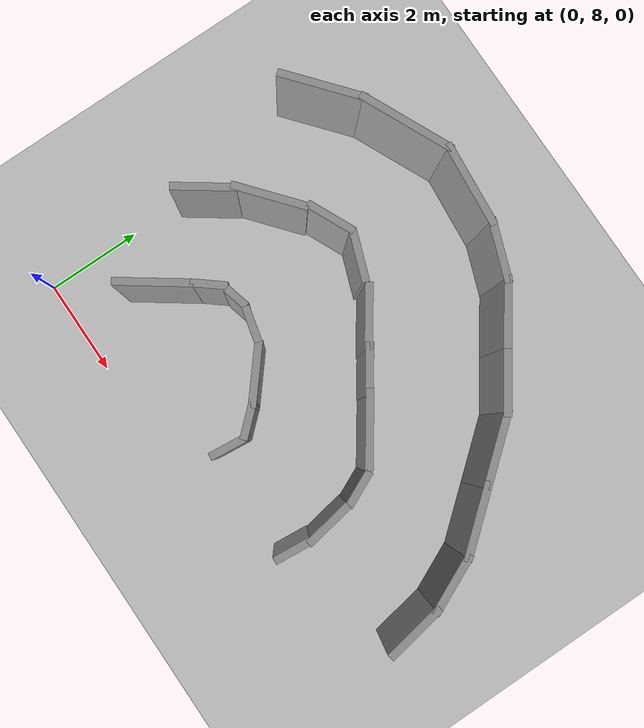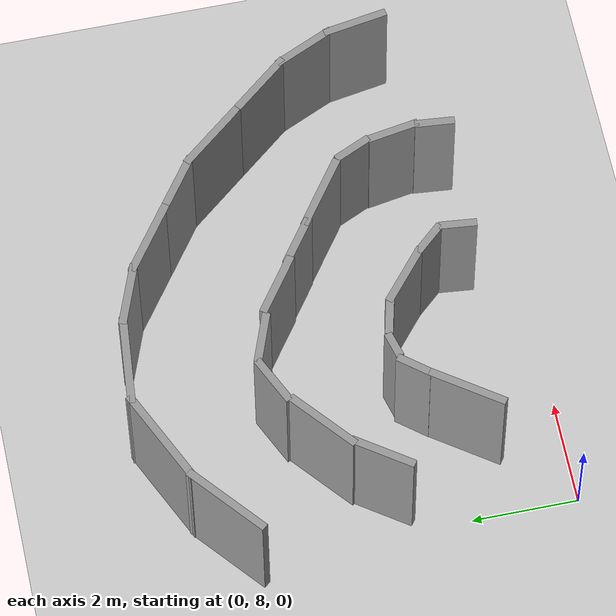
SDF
<sdf version="1.6">
 <world name="default">
  <model name="ground_plane">
   <static>1</static>
   <link name="link">
    <collision name="collision">
     <geometry><plane><normal>0 0 1</normal><size>100 100</size></plane></geometry>
     <surface><friction><ode><mu>100</mu><mu2>50</mu2></ode></friction></surface>
    </collision>
    <visual name="visual">
     <cast_shadows>0</cast_shadows>
     <geometry><plane><normal>0 0 1</normal><size>100 100</size></plane></geometry>
     <material>
      <script><uri>file://media/materials/scripts/gazebo.material</uri><name>Gazebo/Grey</name></script>
     </material>
    </visual>
   </link>
  </model>
  <model name="c-Snail_v3">
   <link name="Wall_24">
    <pose>8.66139 -4.4816 0 0 -0 0.785398</pose>
    <visual name="Wall_24_Visual">
     <pose>0 0 1.25 0 -0 0</pose>
     <geometry><box><size>1.25 0.15 2.5</size></box></geometry>
     <material>
      <script><uri>file://media/materials/scripts/gazebo.material</uri><name>Gazebo/Grey</name></script>
      <ambient>1 1 1 1</ambient>
     </material>
     <meta><layer>0</layer></meta>
    </visual>
    <collision name="Wall_24_Collision">
     <pose>0 0 1.25 0 -0 0</pose>
     <geometry><box><size>1.25 0.15 2.5</size></box></geometry>
     <surface>
      <friction>
       <ode><mu>1</mu><mu2>1</mu2><fdir1>0 0 0</fdir1><slip1>0</slip1><slip2>0</slip2></ode>
       <torsional>
        <coefficient>1</coefficient>
        <patch_radius>0</patch_radius>
        <surface_radius>0</surface_radius>
        <use_patch_radius>1</use_patch_radius>
        <ode><slip>0</slip></ode>
       </torsional>
      </friction>
      <bounce><restitution_coefficient>0</restitution_coefficient><threshold>1e+06</threshold></bounce>
      <contact>
       <collide_without_contact>0</collide_without_contact>
       <collide_without_contact_bitmask>1</collide_without_contact_bitmask>
       <collide_bitmask>1</collide_bitmask>
       <ode>
        <soft_cfm>0</soft_cfm>
        <soft_erp>0.2</soft_erp>
        <kp>1e+13</kp>
        <kd>1</kd>
        <max_vel>0.01</max_vel>
        <min_depth>0</min_depth>
       </ode>
       <bullet>
        <split_impulse>1</split_impulse>
        <split_impulse_penetration_threshold>-0.01</split_impulse_penetration_threshold>
        <soft_cfm>0</soft_cfm>
        <soft_erp>0.2</soft_erp>
        <kp>1e+13</kp>
        <kd>1</kd>
       </bullet>
      </contact>
     </surface>
    </collision>
   </link>
   <link name="Wall_25">
    <pose>9.3253 -3.61638 0 0 -0 1.0472</pose>
    <visual name="Wall_25_Visual">
     <pose>0 0 1.25 0 -0 0</pose>
     <geometry><box><size>1.25 0.15 2.5</size></box></geometry>
     <material>
      <script><uri>file://media/materials/scripts/gazebo.material</uri><name>Gazebo/Grey</name></script>
      <ambient>1 1 1 1</ambient>
     </material>
     <meta><layer>0</layer></meta>
    </visual>
    <collision name="Wall_25_Collision">
     <pose>0 0 1.25 0 -0 0</pose>
     <geometry><box><size>1.25 0.15 2.5</size></box></geometry>
     <surface>
      <friction>
       <ode><mu>1</mu><mu2>1</mu2><fdir1>0 0 0</fdir1><slip1>0</slip1><slip2>0</slip2></ode>
       <torsional>
        <coefficient>1</coefficient>
        <patch_radius>0</patch_radius>
        <surface_radius>0</surface_radius>
        <use_patch_radius>1</use_patch_radius>
        <ode><slip>0</slip></ode>
       </torsional>
      </friction>
      <bounce><restitution_coefficient>0</restitution_coefficient><threshold>1e+06</threshold></bounce>
      <contact>
       <collide_without_contact>0</collide_without_contact>
       <collide_without_contact_bitmask>1</collide_without_contact_bitmask>
       <collide_bitmask>1</collide_bitmask>
       <ode>
        <soft_cfm>0</soft_cfm>
        <soft_erp>0.2</soft_erp>
        <kp>1e+13</kp>
        <kd>1</kd>
        <max_vel>0.01</max_vel>
        <min_depth>0</min_depth>
       </ode>
       <bullet>
        <split_impulse>1</split_impulse>
        <split_impulse_penetration_threshold>-0.01</split_impulse_penetration_threshold>
        <soft_cfm>0</soft_cfm>
        <soft_erp>0.2</soft_erp>
        <kp>1e+13</kp>
        <kd>1</kd>
       </bullet>
      </contact>
     </surface>
    </collision>
   </link>
   <link name="Wall_26">
    <pose>9.775 -2.48806 0 0 -0 1.309</pose>
    <visual name="Wall_26_Visual">
     <pose>0 0 1.25 0 -0 0</pose>
     <geometry><box><size>1.5 0.15 2.5</size></box></geometry>
     <material>
      <script><uri>file://media/materials/scripts/gazebo.material</uri><name>Gazebo/Grey</name></script>
      <ambient>1 1 1 1</ambient>
     </material>
     <meta><layer>0</layer></meta>
    </visual>
    <collision name="Wall_26_Collision">
     <pose>0 0 1.25 0 -0 0</pose>
     <geometry><box><size>1.5 0.15 2.5</size></box></geometry>
     <surface>
      <friction>
       <ode><mu>1</mu><mu2>1</mu2><fdir1>0 0 0</fdir1><slip1>0</slip1><slip2>0</slip2></ode>
       <torsional>
        <coefficient>1</coefficient>
        <patch_radius>0</patch_radius>
        <surface_radius>0</surface_radius>
        <use_patch_radius>1</use_patch_radius>
        <ode><slip>0</slip></ode>
       </torsional>
      </friction>
      <bounce><restitution_coefficient>0</restitution_coefficient><threshold>1e+06</threshold></bounce>
      <contact>
       <collide_without_contact>0</collide_without_contact>
       <collide_without_contact_bitmask>1</collide_without_contact_bitmask>
       <collide_bitmask>1</collide_bitmask>
       <ode>
        <soft_cfm>0</soft_cfm>
        <soft_erp>0.2</soft_erp>
        <kp>1e+13</kp>
        <kd>1</kd>
        <max_vel>0.01</max_vel>
        <min_depth>0</min_depth>
       </ode>
       <bullet>
        <split_impulse>1</split_impulse>
        <split_impulse_penetration_threshold>-0.01</split_impulse_penetration_threshold>
        <soft_cfm>0</soft_cfm>
        <soft_erp>0.2</soft_erp>
        <kp>1e+13</kp>
        <kd>1</kd>
       </bullet>
      </contact>
     </surface>
    </collision>
   </link>
   <link name="Wall_27">
    <pose>10.1244 -1.18406 0 0 -0 1.309</pose>
    <visual name="Wall_27_Visual">
     <pose>0 0 1.25 0 -0 0</pose>
     <geometry><box><size>1.5 0.15 2.5</size></box></geometry>
     <material>
      <script><uri>file://media/materials/scripts/gazebo.material</uri><name>Gazebo/Grey</name></script>
      <ambient>1 1 1 1</ambient>
     </material>
     <meta><layer>0</layer></meta>
    </visual>
    <collision name="Wall_27_Collision">
     <pose>0 0 1.25 0 -0 0</pose>
     <geometry><box><size>1.5 0.15 2.5</size></box></geometry>
     <surface>
      <friction>
       <ode><mu>1</mu><mu2>1</mu2><fdir1>0 0 0</fdir1><slip1>0</slip1><slip2>0</slip2></ode>
       <torsional>
        <coefficient>1</coefficient>
        <patch_radius>0</patch_radius>
        <surface_radius>0</surface_radius>
        <use_patch_radius>1</use_patch_radius>
        <ode><slip>0</slip></ode>
       </torsional>
      </friction>
      <bounce><restitution_coefficient>0</restitution_coefficient><threshold>1e+06</threshold></bounce>
      <contact>
       <collide_without_contact>0</collide_without_contact>
       <collide_without_contact_bitmask>1</collide_without_contact_bitmask>
       <collide_bitmask>1</collide_bitmask>
       <ode>
        <soft_cfm>0</soft_cfm>
        <soft_erp>0.2</soft_erp>
        <kp>1e+13</kp>
        <kd>1</kd>
        <max_vel>0.01</max_vel>
        <min_depth>0</min_depth>
       </ode>
       <bullet>
        <split_impulse>1</split_impulse>
        <split_impulse_penetration_threshold>-0.01</split_impulse_penetration_threshold>
        <soft_cfm>0</soft_cfm>
        <soft_erp>0.2</soft_erp>
        <kp>1e+13</kp>
        <kd>1</kd>
       </bullet>
      </contact>
     </surface>
    </collision>
   </link>
   <link name="Wall_28">
    <pose>10.2991 0.017937 0 0 -0 1.5708</pose>
    <visual name="Wall_28_Visual">
     <pose>0 0 1.25 0 -0 0</pose>
     <geometry><box><size>1.25 0.15 2.5</size></box></geometry>
     <material>
      <script><uri>file://media/materials/scripts/gazebo.material</uri><name>Gazebo/Grey</name></script>
      <ambient>1 1 1 1</ambient>
     </material>
     <meta><layer>0</layer></meta>
    </visual>
    <collision name="Wall_28_Collision">
     <pose>0 0 1.25 0 -0 0</pose>
     <geometry><box><size>1.25 0.15 2.5</size></box></geometry>
     <surface>
      <friction>
       <ode><mu>1</mu><mu2>1</mu2><fdir1>0 0 0</fdir1><slip1>0</slip1><slip2>0</slip2></ode>
       <torsional>
        <coefficient>1</coefficient>
        <patch_radius>0</patch_radius>
        <surface_radius>0</surface_radius>
        <use_patch_radius>1</use_patch_radius>
        <ode><slip>0</slip></ode>
       </torsional>
      </friction>
      <bounce><restitution_coefficient>0</restitution_coefficient><threshold>1e+06</threshold></bounce>
      <contact>
       <collide_without_contact>0</collide_without_contact>
       <collide_without_contact_bitmask>1</collide_without_contact_bitmask>
       <collide_bitmask>1</collide_bitmask>
       <ode>
        <soft_cfm>0</soft_cfm>
        <soft_erp>0.2</soft_erp>
        <kp>1e+13</kp>
        <kd>1</kd>
        <max_vel>0.01</max_vel>
        <min_depth>0</min_depth>
       </ode>
       <bullet>
        <split_impulse>1</split_impulse>
        <split_impulse_penetration_threshold>-0.01</split_impulse_penetration_threshold>
        <soft_cfm>0</soft_cfm>
        <soft_erp>0.2</soft_erp>
        <kp>1e+13</kp>
        <kd>1</kd>
       </bullet>
      </contact>
     </surface>
    </collision>
   </link>
   <link name="Wall_29">
    <pose>10.2991 1.24294 0 0 -0 1.5708</pose>
    <visual name="Wall_29_Visual">
     <pose>0 0 1.25 0 -0 0</pose>
     <geometry><box><size>1.5 0.15 2.5</size></box></geometry>
     <material>
      <script><uri>file://media/materials/scripts/gazebo.material</uri><name>Gazebo/Grey</name></script>
      <ambient>1 1 1 1</ambient>
     </material>
     <meta><layer>0</layer></meta>
    </visual>
    <collision name="Wall_29_Collision">
     <pose>0 0 1.25 0 -0 0</pose>
     <geometry><box><size>1.5 0.15 2.5</size></box></geometry>
     <surface>
      <friction>
       <ode><mu>1</mu><mu2>1</mu2><fdir1>0 0 0</fdir1><slip1>0</slip1><slip2>0</slip2></ode>
       <torsional>
        <coefficient>1</coefficient>
        <patch_radius>0</patch_radius>
        <surface_radius>0</surface_radius>
        <use_patch_radius>1</use_patch_radius>
        <ode><slip>0</slip></ode>
       </torsional>
      </friction>
      <bounce><restitution_coefficient>0</restitution_coefficient><threshold>1e+06</threshold></bounce>
      <contact>
       <collide_without_contact>0</collide_without_contact>
       <collide_without_contact_bitmask>1</collide_without_contact_bitmask>
       <collide_bitmask>1</collide_bitmask>
       <ode>
        <soft_cfm>0</soft_cfm>
        <soft_erp>0.2</soft_erp>
        <kp>1e+13</kp>
        <kd>1</kd>
        <max_vel>0.01</max_vel>
        <min_depth>0</min_depth>
       </ode>
       <bullet>
        <split_impulse>1</split_impulse>
        <split_impulse_penetration_threshold>-0.01</split_impulse_penetration_threshold>
        <soft_cfm>0</soft_cfm>
        <soft_erp>0.2</soft_erp>
        <kp>1e+13</kp>
        <kd>1</kd>
       </bullet>
      </contact>
     </surface>
    </collision>
   </link>
   <link name="Wall_30">
    <pose>10.1568 2.4492 0 0 -0 1.8326</pose>
    <visual name="Wall_30_Visual">
     <pose>0 0 1.25 0 -0 0</pose>
     <geometry><box><size>1.25 0.15 2.5</size></box></geometry>
     <material>
      <script><uri>file://media/materials/scripts/gazebo.material</uri><name>Gazebo/Grey</name></script>
      <ambient>1 1 1 1</ambient>
     </material>
     <meta><layer>0</layer></meta>
    </visual>
    <collision name="Wall_30_Collision">
     <pose>0 0 1.25 0 -0 0</pose>
     <geometry><box><size>1.25 0.15 2.5</size></box></geometry>
     <surface>
      <friction>
       <ode><mu>1</mu><mu2>1</mu2><fdir1>0 0 0</fdir1><slip1>0</slip1><slip2>0</slip2></ode>
       <torsional>
        <coefficient>1</coefficient>
        <patch_radius>0</patch_radius>
        <surface_radius>0</surface_radius>
        <use_patch_radius>1</use_patch_radius>
        <ode><slip>0</slip></ode>
       </torsional>
      </friction>
      <bounce><restitution_coefficient>0</restitution_coefficient><threshold>1e+06</threshold></bounce>
      <contact>
       <collide_without_contact>0</collide_without_contact>
       <collide_without_contact_bitmask>1</collide_without_contact_bitmask>
       <collide_bitmask>1</collide_bitmask>
       <ode>
        <soft_cfm>0</soft_cfm>
        <soft_erp>0.2</soft_erp>
        <kp>1e+13</kp>
        <kd>1</kd>
        <max_vel>0.01</max_vel>
        <min_depth>0</min_depth>
       </ode>
       <bullet>
        <split_impulse>1</split_impulse>
        <split_impulse_penetration_threshold>-0.01</split_impulse_penetration_threshold>
        <soft_cfm>0</soft_cfm>
        <soft_erp>0.2</soft_erp>
        <kp>1e+13</kp>
        <kd>1</kd>
       </bullet>
      </contact>
     </surface>
    </collision>
   </link>
   <link name="Wall_31">
    <pose>9.61441 3.67328 0 0 -0 2.0944</pose>
    <visual name="Wall_31_Visual">
     <pose>0 0 1.25 0 -0 0</pose>
     <geometry><box><size>1.75 0.15 2.5</size></box></geometry>
     <material>
      <script><uri>file://media/materials/scripts/gazebo.material</uri><name>Gazebo/Grey</name></script>
      <ambient>1 1 1 1</ambient>
     </material>
     <meta><layer>0</layer></meta>
    </visual>
    <collision name="Wall_31_Collision">
     <pose>0 0 1.25 0 -0 0</pose>
     <geometry><box><size>1.75 0.15 2.5</size></box></geometry>
     <surface>
      <friction>
       <ode><mu>1</mu><mu2>1</mu2><fdir1>0 0 0</fdir1><slip1>0</slip1><slip2>0</slip2></ode>
       <torsional>
        <coefficient>1</coefficient>
        <patch_radius>0</patch_radius>
        <surface_radius>0</surface_radius>
        <use_patch_radius>1</use_patch_radius>
        <ode><slip>0</slip></ode>
       </torsional>
      </friction>
      <bounce><restitution_coefficient>0</restitution_coefficient><threshold>1e+06</threshold></bounce>
      <contact>
       <collide_without_contact>0</collide_without_contact>
       <collide_without_contact_bitmask>1</collide_without_contact_bitmask>
       <collide_bitmask>1</collide_bitmask>
       <ode>
        <soft_cfm>0</soft_cfm>
        <soft_erp>0.2</soft_erp>
        <kp>1e+13</kp>
        <kd>1</kd>
        <max_vel>0.01</max_vel>
        <min_depth>0</min_depth>
       </ode>
       <bullet>
        <split_impulse>1</split_impulse>
        <split_impulse_penetration_threshold>-0.01</split_impulse_penetration_threshold>
        <soft_cfm>0</soft_cfm>
        <soft_erp>0.2</soft_erp>
        <kp>1e+13</kp>
        <kd>1</kd>
       </bullet>
      </contact>
     </surface>
    </collision>
   </link>
   <link name="Wall_32">
    <pose>8.41334 4.8286 0 0 -0 2.61799</pose>
    <visual name="Wall_32_Visual">
     <pose>0 0 1.25 0 -0 0</pose>
     <geometry><box><size>2 0.15 2.5</size></box></geometry>
     <material>
      <script><uri>file://media/materials/scripts/gazebo.material</uri><name>Gazebo/Grey</name></script>
      <ambient>1 1 1 1</ambient>
     </material>
     <meta><layer>0</layer></meta>
    </visual>
    <collision name="Wall_32_Collision">
     <pose>0 0 1.25 0 -0 0</pose>
     <geometry><box><size>2 0.15 2.5</size></box></geometry>
     <surface>
      <friction>
       <ode><mu>1</mu><mu2>1</mu2><fdir1>0 0 0</fdir1><slip1>0</slip1><slip2>0</slip2></ode>
       <torsional>
        <coefficient>1</coefficient>
        <patch_radius>0</patch_radius>
        <surface_radius>0</surface_radius>
        <use_patch_radius>1</use_patch_radius>
        <ode><slip>0</slip></ode>
       </torsional>
      </friction>
      <bounce><restitution_coefficient>0</restitution_coefficient><threshold>1e+06</threshold></bounce>
      <contact>
       <collide_without_contact>0</collide_without_contact>
       <collide_without_contact_bitmask>1</collide_without_contact_bitmask>
       <collide_bitmask>1</collide_bitmask>
       <ode>
        <soft_cfm>0</soft_cfm>
        <soft_erp>0.2</soft_erp>
        <kp>1e+13</kp>
        <kd>1</kd>
        <max_vel>0.01</max_vel>
        <min_depth>0</min_depth>
       </ode>
       <bullet>
        <split_impulse>1</split_impulse>
        <split_impulse_penetration_threshold>-0.01</split_impulse_penetration_threshold>
        <soft_cfm>0</soft_cfm>
        <soft_erp>0.2</soft_erp>
        <kp>1e+13</kp>
        <kd>1</kd>
       </bullet>
      </contact>
     </surface>
    </collision>
   </link>
   <link name="Wall_33">
    <pose>6.83952 5.49815 0 0 -0 2.87979</pose>
    <visual name="Wall_33_Visual">
     <pose>0 0 1.25 0 -0 0</pose>
     <geometry><box><size>1.75 0.15 2.5</size></box></geometry>
     <material>
      <script><uri>file://media/materials/scripts/gazebo.material</uri><name>Gazebo/Grey</name></script>
      <ambient>1 1 1 1</ambient>
     </material>
     <meta><layer>0</layer></meta>
    </visual>
    <collision name="Wall_33_Collision">
     <pose>0 0 1.25 0 -0 0</pose>
     <geometry><box><size>1.75 0.15 2.5</size></box></geometry>
     <surface>
      <friction>
       <ode><mu>1</mu><mu2>1</mu2><fdir1>0 0 0</fdir1><slip1>0</slip1><slip2>0</slip2></ode>
       <torsional>
        <coefficient>1</coefficient>
        <patch_radius>0</patch_radius>
        <surface_radius>0</surface_radius>
        <use_patch_radius>1</use_patch_radius>
        <ode><slip>0</slip></ode>
       </torsional>
      </friction>
      <bounce><restitution_coefficient>0</restitution_coefficient><threshold>1e+06</threshold></bounce>
      <contact>
       <collide_without_contact>0</collide_without_contact>
       <collide_without_contact_bitmask>1</collide_without_contact_bitmask>
       <collide_bitmask>1</collide_bitmask>
       <ode>
        <soft_cfm>0</soft_cfm>
        <soft_erp>0.2</soft_erp>
        <kp>1e+13</kp>
        <kd>1</kd>
        <max_vel>0.01</max_vel>
        <min_depth>0</min_depth>
       </ode>
       <bullet>
        <split_impulse>1</split_impulse>
        <split_impulse_penetration_threshold>-0.01</split_impulse_penetration_threshold>
        <soft_cfm>0</soft_cfm>
        <soft_erp>0.2</soft_erp>
        <kp>1e+13</kp>
        <kd>1</kd>
       </bullet>
      </contact>
     </surface>
    </collision>
   </link>
   <link name="Wall_51">
    <pose>6.44534 -3.07335 0 0 -0 0.523599</pose>
    <visual name="Wall_51_Visual">
     <pose>0 0 1.25 0 -0 0</pose>
     <geometry><box><size>0.75 0.15 2.5</size></box></geometry>
     <material>
      <script><uri>file://media/materials/scripts/gazebo.material</uri><name>Gazebo/Grey</name></script>
      <ambient>1 1 1 1</ambient>
     </material>
     <meta><layer>0</layer></meta>
    </visual>
    <collision name="Wall_51_Collision">
     <pose>0 0 1.25 0 -0 0</pose>
     <geometry><box><size>0.75 0.15 2.5</size></box></geometry>
     <surface>
      <friction>
       <ode><mu>1</mu><mu2>1</mu2><fdir1>0 0 0</fdir1><slip1>0</slip1><slip2>0</slip2></ode>
       <torsional>
        <coefficient>1</coefficient>
        <patch_radius>0</patch_radius>
        <surface_radius>0</surface_radius>
        <use_patch_radius>1</use_patch_radius>
        <ode><slip>0</slip></ode>
       </torsional>
      </friction>
      <bounce><restitution_coefficient>0</restitution_coefficient><threshold>1e+06</threshold></bounce>
      <contact>
       <collide_without_contact>0</collide_without_contact>
       <collide_without_contact_bitmask>1</collide_without_contact_bitmask>
       <collide_bitmask>1</collide_bitmask>
       <ode>
        <soft_cfm>0</soft_cfm>
        <soft_erp>0.2</soft_erp>
        <kp>1e+13</kp>
        <kd>1</kd>
        <max_vel>0.01</max_vel>
        <min_depth>0</min_depth>
       </ode>
       <bullet>
        <split_impulse>1</split_impulse>
        <split_impulse_penetration_threshold>-0.01</split_impulse_penetration_threshold>
        <soft_cfm>0</soft_cfm>
        <soft_erp>0.2</soft_erp>
        <kp>1e+13</kp>
        <kd>1</kd>
       </bullet>
      </contact>
     </surface>
    </collision>
   </link>
   <link name="Wall_52">
    <pose>7.08455 -2.59483 0 0 -0 0.785398</pose>
    <visual name="Wall_52_Visual">
     <pose>0 0 1.25 0 -0 0</pose>
     <geometry><box><size>1 0.15 2.5</size></box></geometry>
     <material>
      <script><uri>file://media/materials/scripts/gazebo.material</uri><name>Gazebo/Grey</name></script>
      <ambient>1 1 1 1</ambient>
     </material>
     <meta><layer>0</layer></meta>
    </visual>
    <collision name="Wall_52_Collision">
     <pose>0 0 1.25 0 -0 0</pose>
     <geometry><box><size>1 0.15 2.5</size></box></geometry>
     <surface>
      <friction>
       <ode><mu>1</mu><mu2>1</mu2><fdir1>0 0 0</fdir1><slip1>0</slip1><slip2>0</slip2></ode>
       <torsional>
        <coefficient>1</coefficient>
        <patch_radius>0</patch_radius>
        <surface_radius>0</surface_radius>
        <use_patch_radius>1</use_patch_radius>
        <ode><slip>0</slip></ode>
       </torsional>
      </friction>
      <bounce><restitution_coefficient>0</restitution_coefficient><threshold>1e+06</threshold></bounce>
      <contact>
       <collide_without_contact>0</collide_without_contact>
       <collide_without_contact_bitmask>1</collide_without_contact_bitmask>
       <collide_bitmask>1</collide_bitmask>
       <ode>
        <soft_cfm>0</soft_cfm>
        <soft_erp>0.2</soft_erp>
        <kp>1e+13</kp>
        <kd>1</kd>
        <max_vel>0.01</max_vel>
        <min_depth>0</min_depth>
       </ode>
       <bullet>
        <split_impulse>1</split_impulse>
        <split_impulse_penetration_threshold>-0.01</split_impulse_penetration_threshold>
        <soft_cfm>0</soft_cfm>
        <soft_erp>0.2</soft_erp>
        <kp>1e+13</kp>
        <kd>1</kd>
       </bullet>
      </contact>
     </surface>
    </collision>
   </link>
   <link name="Wall_53">
    <pose>7.62419 -1.95298 0 0 -0 1.0472</pose>
    <visual name="Wall_53_Visual">
     <pose>0 0 1.25 0 -0 0</pose>
     <geometry><box><size>0.75 0.15 2.5</size></box></geometry>
     <material>
      <script><uri>file://media/materials/scripts/gazebo.material</uri><name>Gazebo/Grey</name></script>
      <ambient>1 1 1 1</ambient>
     </material>
     <meta><layer>0</layer></meta>
    </visual>
    <collision name="Wall_53_Collision">
     <pose>0 0 1.25 0 -0 0</pose>
     <geometry><box><size>0.75 0.15 2.5</size></box></geometry>
     <surface>
      <friction>
       <ode><mu>1</mu><mu2>1</mu2><fdir1>0 0 0</fdir1><slip1>0</slip1><slip2>0</slip2></ode>
       <torsional>
        <coefficient>1</coefficient>
        <patch_radius>0</patch_radius>
        <surface_radius>0</surface_radius>
        <use_patch_radius>1</use_patch_radius>
        <ode><slip>0</slip></ode>
       </torsional>
      </friction>
      <bounce><restitution_coefficient>0</restitution_coefficient><threshold>1e+06</threshold></bounce>
      <contact>
       <collide_without_contact>0</collide_without_contact>
       <collide_without_contact_bitmask>1</collide_without_contact_bitmask>
       <collide_bitmask>1</collide_bitmask>
       <ode>
        <soft_cfm>0</soft_cfm>
        <soft_erp>0.2</soft_erp>
        <kp>1e+13</kp>
        <kd>1</kd>
        <max_vel>0.01</max_vel>
        <min_depth>0</min_depth>
       </ode>
       <bullet>
        <split_impulse>1</split_impulse>
        <split_impulse_penetration_threshold>-0.01</split_impulse_penetration_threshold>
        <soft_cfm>0</soft_cfm>
        <soft_erp>0.2</soft_erp>
        <kp>1e+13</kp>
        <kd>1</kd>
       </bullet>
      </contact>
     </surface>
    </collision>
   </link>
   <link name="Wall_54">
    <pose>7.79615 -0.874793 0 0 -0 1.5708</pose>
    <visual name="Wall_54_Visual">
     <pose>0 0 1.25 0 -0 0</pose>
     <geometry><box><size>1.5 0.15 2.5</size></box></geometry>
     <material>
      <script><uri>file://media/materials/scripts/gazebo.material</uri><name>Gazebo/Grey</name></script>
      <ambient>1 1 1 1</ambient>
     </material>
     <meta><layer>0</layer></meta>
    </visual>
    <collision name="Wall_54_Collision">
     <pose>0 0 1.25 0 -0 0</pose>
     <geometry><box><size>1.5 0.15 2.5</size></box></geometry>
     <surface>
      <friction>
       <ode><mu>1</mu><mu2>1</mu2><fdir1>0 0 0</fdir1><slip1>0</slip1><slip2>0</slip2></ode>
       <torsional>
        <coefficient>1</coefficient>
        <patch_radius>0</patch_radius>
        <surface_radius>0</surface_radius>
        <use_patch_radius>1</use_patch_radius>
        <ode><slip>0</slip></ode>
       </torsional>
      </friction>
      <bounce><restitution_coefficient>0</restitution_coefficient><threshold>1e+06</threshold></bounce>
      <contact>
       <collide_without_contact>0</collide_without_contact>
       <collide_without_contact_bitmask>1</collide_without_contact_bitmask>
       <collide_bitmask>1</collide_bitmask>
       <ode>
        <soft_cfm>0</soft_cfm>
        <soft_erp>0.2</soft_erp>
        <kp>1e+13</kp>
        <kd>1</kd>
        <max_vel>0.01</max_vel>
        <min_depth>0</min_depth>
       </ode>
       <bullet>
        <split_impulse>1</split_impulse>
        <split_impulse_penetration_threshold>-0.01</split_impulse_penetration_threshold>
        <soft_cfm>0</soft_cfm>
        <soft_erp>0.2</soft_erp>
        <kp>1e+13</kp>
        <kd>1</kd>
       </bullet>
      </contact>
     </surface>
    </collision>
   </link>
   <link name="Wall_55">
    <pose>7.78252 0.225208 0 0 -0 1.5708</pose>
    <visual name="Wall_55_Visual">
     <pose>0 0 1.25 0 -0 0</pose>
     <geometry><box><size>1 0.15 2.5</size></box></geometry>
     <material>
      <script><uri>file://media/materials/scripts/gazebo.material</uri><name>Gazebo/Grey</name></script>
      <ambient>1 1 1 1</ambient>
     </material>
     <meta><layer>0</layer></meta>
    </visual>
    <collision name="Wall_55_Collision">
     <pose>0 0 1.25 0 -0 0</pose>
     <geometry><box><size>1 0.15 2.5</size></box></geometry>
     <surface>
      <friction>
       <ode><mu>1</mu><mu2>1</mu2><fdir1>0 0 0</fdir1><slip1>0</slip1><slip2>0</slip2></ode>
       <torsional>
        <coefficient>1</coefficient>
        <patch_radius>0</patch_radius>
        <surface_radius>0</surface_radius>
        <use_patch_radius>1</use_patch_radius>
        <ode><slip>0</slip></ode>
       </torsional>
      </friction>
      <bounce><restitution_coefficient>0</restitution_coefficient><threshold>1e+06</threshold></bounce>
      <contact>
       <collide_without_contact>0</collide_without_contact>
       <collide_without_contact_bitmask>1</collide_without_contact_bitmask>
       <collide_bitmask>1</collide_bitmask>
       <ode>
        <soft_cfm>0</soft_cfm>
        <soft_erp>0.2</soft_erp>
        <kp>1e+13</kp>
        <kd>1</kd>
        <max_vel>0.01</max_vel>
        <min_depth>0</min_depth>
       </ode>
       <bullet>
        <split_impulse>1</split_impulse>
        <split_impulse_penetration_threshold>-0.01</split_impulse_penetration_threshold>
        <soft_cfm>0</soft_cfm>
        <soft_erp>0.2</soft_erp>
        <kp>1e+13</kp>
        <kd>1</kd>
       </bullet>
      </contact>
     </surface>
    </collision>
   </link>
   <link name="Wall_56">
    <pose>7.75985 1.20021 0 0 -0 1.5708</pose>
    <visual name="Wall_56_Visual">
     <pose>0 0 1.25 0 -0 0</pose>
     <geometry><box><size>1.25 0.15 2.5</size></box></geometry>
     <material>
      <script><uri>file://media/materials/scripts/gazebo.material</uri><name>Gazebo/Grey</name></script>
      <ambient>1 1 1 1</ambient>
     </material>
     <meta><layer>0</layer></meta>
    </visual>
    <collision name="Wall_56_Collision">
     <pose>0 0 1.25 0 -0 0</pose>
     <geometry><box><size>1.25 0.15 2.5</size></box></geometry>
     <surface>
      <friction>
       <ode><mu>1</mu><mu2>1</mu2><fdir1>0 0 0</fdir1><slip1>0</slip1><slip2>0</slip2></ode>
       <torsional>
        <coefficient>1</coefficient>
        <patch_radius>0</patch_radius>
        <surface_radius>0</surface_radius>
        <use_patch_radius>1</use_patch_radius>
        <ode><slip>0</slip></ode>
       </torsional>
      </friction>
      <bounce><restitution_coefficient>0</restitution_coefficient><threshold>1e+06</threshold></bounce>
      <contact>
       <collide_without_contact>0</collide_without_contact>
       <collide_without_contact_bitmask>1</collide_without_contact_bitmask>
       <collide_bitmask>1</collide_bitmask>
       <ode>
        <soft_cfm>0</soft_cfm>
        <soft_erp>0.2</soft_erp>
        <kp>1e+13</kp>
        <kd>1</kd>
        <max_vel>0.01</max_vel>
        <min_depth>0</min_depth>
       </ode>
       <bullet>
        <split_impulse>1</split_impulse>
        <split_impulse_penetration_threshold>-0.01</split_impulse_penetration_threshold>
        <soft_cfm>0</soft_cfm>
        <soft_erp>0.2</soft_erp>
        <kp>1e+13</kp>
        <kd>1</kd>
       </bullet>
      </contact>
     </surface>
    </collision>
   </link>
   <link name="Wall_57">
    <pose>7.56918 2.29911 0 0 -0 1.8326</pose>
    <visual name="Wall_57_Visual">
     <pose>0 0 1.25 0 -0 0</pose>
     <geometry><box><size>1 0.15 2.5</size></box></geometry>
     <material>
      <script><uri>file://media/materials/scripts/gazebo.material</uri><name>Gazebo/Grey</name></script>
      <ambient>1 1 1 1</ambient>
     </material>
     <meta><layer>0</layer></meta>
    </visual>
    <collision name="Wall_57_Collision">
     <pose>0 0 1.25 0 -0 0</pose>
     <geometry><box><size>1 0.15 2.5</size></box></geometry>
     <surface>
      <friction>
       <ode><mu>1</mu><mu2>1</mu2><fdir1>0 0 0</fdir1><slip1>0</slip1><slip2>0</slip2></ode>
       <torsional>
        <coefficient>1</coefficient>
        <patch_radius>0</patch_radius>
        <surface_radius>0</surface_radius>
        <use_patch_radius>1</use_patch_radius>
        <ode><slip>0</slip></ode>
       </torsional>
      </friction>
      <bounce><restitution_coefficient>0</restitution_coefficient><threshold>1e+06</threshold></bounce>
      <contact>
       <collide_without_contact>0</collide_without_contact>
       <collide_without_contact_bitmask>1</collide_without_contact_bitmask>
       <collide_bitmask>1</collide_bitmask>
       <ode>
        <soft_cfm>0</soft_cfm>
        <soft_erp>0.2</soft_erp>
        <kp>1e+13</kp>
        <kd>1</kd>
        <max_vel>0.01</max_vel>
        <min_depth>0</min_depth>
       </ode>
       <bullet>
        <split_impulse>1</split_impulse>
        <split_impulse_penetration_threshold>-0.01</split_impulse_penetration_threshold>
        <soft_cfm>0</soft_cfm>
        <soft_erp>0.2</soft_erp>
        <kp>1e+13</kp>
        <kd>1</kd>
       </bullet>
      </contact>
     </surface>
    </collision>
   </link>
   <link name="Wall_58">
    <pose>7.036 3.00803 0 0 -0 2.61799</pose>
    <visual name="Wall_58_Visual">
     <pose>0 0 1.25 0 -0 0</pose>
     <geometry><box><size>1 0.15 2.5</size></box></geometry>
     <material>
      <script><uri>file://media/materials/scripts/gazebo.material</uri><name>Gazebo/Grey</name></script>
      <ambient>1 1 1 1</ambient>
     </material>
     <meta><layer>0</layer></meta>
    </visual>
    <collision name="Wall_58_Collision">
     <pose>0 0 1.25 0 -0 0</pose>
     <geometry><box><size>1 0.15 2.5</size></box></geometry>
     <surface>
      <friction>
       <ode><mu>1</mu><mu2>1</mu2><fdir1>0 0 0</fdir1><slip1>0</slip1><slip2>0</slip2></ode>
       <torsional>
        <coefficient>1</coefficient>
        <patch_radius>0</patch_radius>
        <surface_radius>0</surface_radius>
        <use_patch_radius>1</use_patch_radius>
        <ode><slip>0</slip></ode>
       </torsional>
      </friction>
      <bounce><restitution_coefficient>0</restitution_coefficient><threshold>1e+06</threshold></bounce>
      <contact>
       <collide_without_contact>0</collide_without_contact>
       <collide_without_contact_bitmask>1</collide_without_contact_bitmask>
       <collide_bitmask>1</collide_bitmask>
       <ode>
        <soft_cfm>0</soft_cfm>
        <soft_erp>0.2</soft_erp>
        <kp>1e+13</kp>
        <kd>1</kd>
        <max_vel>0.01</max_vel>
        <min_depth>0</min_depth>
       </ode>
       <bullet>
        <split_impulse>1</split_impulse>
        <split_impulse_penetration_threshold>-0.01</split_impulse_penetration_threshold>
        <soft_cfm>0</soft_cfm>
        <soft_erp>0.2</soft_erp>
        <kp>1e+13</kp>
        <kd>1</kd>
       </bullet>
      </contact>
     </surface>
    </collision>
   </link>
   <link name="Wall_59">
    <pose>5.90215 3.39004 0 0 -0 2.87979</pose>
    <visual name="Wall_59_Visual">
     <pose>0 0 1.25 0 -0 0</pose>
     <geometry><box><size>1.5 0.15 2.5</size></box></geometry>
     <material>
      <script><uri>file://media/materials/scripts/gazebo.material</uri><name>Gazebo/Grey</name></script>
      <ambient>1 1 1 1</ambient>
     </material>
     <meta><layer>0</layer></meta>
    </visual>
    <collision name="Wall_59_Collision">
     <pose>0 0 1.25 0 -0 0</pose>
     <geometry><box><size>1.5 0.15 2.5</size></box></geometry>
     <surface>
      <friction>
       <ode><mu>1</mu><mu2>1</mu2><fdir1>0 0 0</fdir1><slip1>0</slip1><slip2>0</slip2></ode>
       <torsional>
        <coefficient>1</coefficient>
        <patch_radius>0</patch_radius>
        <surface_radius>0</surface_radius>
        <use_patch_radius>1</use_patch_radius>
        <ode><slip>0</slip></ode>
       </torsional>
      </friction>
      <bounce><restitution_coefficient>0</restitution_coefficient><threshold>1e+06</threshold></bounce>
      <contact>
       <collide_without_contact>0</collide_without_contact>
       <collide_without_contact_bitmask>1</collide_without_contact_bitmask>
       <collide_bitmask>1</collide_bitmask>
       <ode>
        <soft_cfm>0</soft_cfm>
        <soft_erp>0.2</soft_erp>
        <kp>1e+13</kp>
        <kd>1</kd>
        <max_vel>0.01</max_vel>
        <min_depth>0</min_depth>
       </ode>
       <bullet>
        <split_impulse>1</split_impulse>
        <split_impulse_penetration_threshold>-0.01</split_impulse_penetration_threshold>
        <soft_cfm>0</soft_cfm>
        <soft_erp>0.2</soft_erp>
        <kp>1e+13</kp>
        <kd>1</kd>
       </bullet>
      </contact>
     </surface>
    </collision>
   </link>
   <link name="Wall_60">
    <pose>4.67122 3.53706 0 0 -0 3.14159</pose>
    <visual name="Wall_60_Visual">
     <pose>0 0 1.25 0 -0 0</pose>
     <geometry><box><size>1.25 0.15 2.5</size></box></geometry>
     <material>
      <script><uri>file://media/materials/scripts/gazebo.material</uri><name>Gazebo/Grey</name></script>
      <ambient>1 1 1 1</ambient>
     </material>
     <meta><layer>0</layer></meta>
    </visual>
    <collision name="Wall_60_Collision">
     <pose>0 0 1.25 0 -0 0</pose>
     <geometry><box><size>1.25 0.15 2.5</size></box></geometry>
     <surface>
      <friction>
       <ode><mu>1</mu><mu2>1</mu2><fdir1>0 0 0</fdir1><slip1>0</slip1><slip2>0</slip2></ode>
       <torsional>
        <coefficient>1</coefficient>
        <patch_radius>0</patch_radius>
        <surface_radius>0</surface_radius>
        <use_patch_radius>1</use_patch_radius>
        <ode><slip>0</slip></ode>
       </torsional>
      </friction>
      <bounce><restitution_coefficient>0</restitution_coefficient><threshold>1e+06</threshold></bounce>
      <contact>
       <collide_without_contact>0</collide_without_contact>
       <collide_without_contact_bitmask>1</collide_without_contact_bitmask>
       <collide_bitmask>1</collide_bitmask>
       <ode>
        <soft_cfm>0</soft_cfm>
        <soft_erp>0.2</soft_erp>
        <kp>1e+13</kp>
        <kd>1</kd>
        <max_vel>0.01</max_vel>
        <min_depth>0</min_depth>
       </ode>
       <bullet>
        <split_impulse>1</split_impulse>
        <split_impulse_penetration_threshold>-0.01</split_impulse_penetration_threshold>
        <soft_cfm>0</soft_cfm>
        <soft_erp>0.2</soft_erp>
        <kp>1e+13</kp>
        <kd>1</kd>
       </bullet>
      </contact>
     </surface>
    </collision>
   </link>
   <link name="Wall_71_clone">
    <pose>3.78048 1.74575 0 0 -0 3.13791</pose>
    <visual name="Wall_71_Visual">
     <pose>0 0 1.25 0 -0 0</pose>
     <geometry><box><size>1.5 0.15 2.5</size></box></geometry>
     <material>
      <script><uri>file://media/materials/scripts/gazebo.material</uri><name>Gazebo/Grey</name></script>
      <ambient>1 1 1 1</ambient>
      <shader type="pixel"/>
     </material>
     <meta><layer>0</layer></meta>
    </visual>
    <collision name="Wall_71_Collision">
     <pose>0 0 1.25 0 -0 0</pose>
     <geometry><box><size>1.5 0.15 2.5</size></box></geometry>
     <surface>
      <friction>
       <ode><mu>1</mu><mu2>1</mu2><fdir1>0 0 0</fdir1><slip1>0</slip1><slip2>0</slip2></ode>
       <torsional>
        <coefficient>1</coefficient>
        <patch_radius>0</patch_radius>
        <surface_radius>0</surface_radius>
        <use_patch_radius>1</use_patch_radius>
        <ode><slip>0</slip></ode>
       </torsional>
      </friction>
      <bounce><restitution_coefficient>0</restitution_coefficient><threshold>1e+06</threshold></bounce>
      <contact>
       <collide_without_contact>0</collide_without_contact>
       <collide_without_contact_bitmask>1</collide_without_contact_bitmask>
       <collide_bitmask>1</collide_bitmask>
       <ode>
        <soft_cfm>0</soft_cfm>
        <soft_erp>0.2</soft_erp>
        <kp>1e+13</kp>
        <kd>1</kd>
        <max_vel>0.01</max_vel>
        <min_depth>0</min_depth>
       </ode>
       <bullet>
        <split_impulse>1</split_impulse>
        <split_impulse_penetration_threshold>-0.01</split_impulse_penetration_threshold>
        <soft_cfm>0</soft_cfm>
        <soft_erp>0.2</soft_erp>
        <kp>1e+13</kp>
        <kd>1</kd>
       </bullet>
      </contact>
     </surface>
    </collision>
   </link>
   <link name="Wall_72_clone">
    <pose>5.70761 0.097339 0 0 0 -1.65202</pose>
    <visual name="Wall_72_Visual">
     <pose>0 0 1.25 0 -0 0</pose>
     <geometry><box><size>1.25 0.15 2.5</size></box></geometry>
     <material>
      <script><uri>file://media/materials/scripts/gazebo.material</uri><name>Gazebo/Grey</name></script>
      <ambient>1 1 1 1</ambient>
      <shader type="pixel"/>
     </material>
     <meta><layer>0</layer></meta>
    </visual>
    <collision name="Wall_72_Collision">
     <pose>0 0 1.25 0 -0 0</pose>
     <geometry><box><size>1.25 0.15 2.5</size></box></geometry>
     <surface>
      <friction>
       <ode><mu>1</mu><mu2>1</mu2><fdir1>0 0 0</fdir1><slip1>0</slip1><slip2>0</slip2></ode>
       <torsional>
        <coefficient>1</coefficient>
        <patch_radius>0</patch_radius>
        <surface_radius>0</surface_radius>
        <use_patch_radius>1</use_patch_radius>
        <ode><slip>0</slip></ode>
       </torsional>
      </friction>
      <bounce><restitution_coefficient>0</restitution_coefficient><threshold>1e+06</threshold></bounce>
      <contact>
       <collide_without_contact>0</collide_without_contact>
       <collide_without_contact_bitmask>1</collide_without_contact_bitmask>
       <collide_bitmask>1</collide_bitmask>
       <ode>
        <soft_cfm>0</soft_cfm>
        <soft_erp>0.2</soft_erp>
        <kp>1e+13</kp>
        <kd>1</kd>
        <max_vel>0.01</max_vel>
        <min_depth>0</min_depth>
       </ode>
       <bullet>
        <split_impulse>1</split_impulse>
        <split_impulse_penetration_threshold>-0.01</split_impulse_penetration_threshold>
        <soft_cfm>0</soft_cfm>
        <soft_erp>0.2</soft_erp>
        <kp>1e+13</kp>
        <kd>1</kd>
       </bullet>
      </contact>
     </surface>
    </collision>
   </link>
   <link name="Wall_73">
    <pose>5.22018 -1.25259 0 0 -0 0.514025</pose>
    <visual name="Wall_73_Visual">
     <pose>0 0 1.25 0 -0 0</pose>
     <geometry><box><size>0.701928 0.15 2.5</size></box></geometry>
     <material>
      <script><uri>file://media/materials/scripts/gazebo.material</uri><name>Gazebo/Grey</name></script>
      <ambient>1 1 1 1</ambient>
     </material>
     <meta><layer>0</layer></meta>
    </visual>
    <collision name="Wall_73_Collision">
     <pose>0 0 1.25 0 -0 0</pose>
     <geometry><box><size>0.701928 0.15 2.5</size></box></geometry>
     <surface>
      <friction>
       <ode><mu>1</mu><mu2>1</mu2><fdir1>0 0 0</fdir1><slip1>0</slip1><slip2>0</slip2></ode>
       <torsional>
        <coefficient>1</coefficient>
        <patch_radius>0</patch_radius>
        <surface_radius>0</surface_radius>
        <use_patch_radius>1</use_patch_radius>
        <ode><slip>0</slip></ode>
       </torsional>
      </friction>
      <bounce><restitution_coefficient>0</restitution_coefficient><threshold>1e+06</threshold></bounce>
      <contact>
       <collide_without_contact>0</collide_without_contact>
       <collide_without_contact_bitmask>1</collide_without_contact_bitmask>
       <collide_bitmask>1</collide_bitmask>
       <ode>
        <soft_cfm>0</soft_cfm>
        <soft_erp>0.2</soft_erp>
        <kp>1e+13</kp>
        <kd>1</kd>
        <max_vel>0.01</max_vel>
        <min_depth>0</min_depth>
       </ode>
       <bullet>
        <split_impulse>1</split_impulse>
        <split_impulse_penetration_threshold>-0.01</split_impulse_penetration_threshold>
        <soft_cfm>0</soft_cfm>
        <soft_erp>0.2</soft_erp>
        <kp>1e+13</kp>
        <kd>1</kd>
       </bullet>
      </contact>
     </surface>
    </collision>
   </link>
   <link name="Wall_73_clone">
    <pose>5.59262 -0.765538 0 0 0 -1.79294</pose>
    <visual name="Wall_73_Visual">
     <pose>0 0 1.25 0 -0 0</pose>
     <geometry><box><size>0.701928 0.15 2.5</size></box></geometry>
     <material>
      <script><uri>file://media/materials/scripts/gazebo.material</uri><name>Gazebo/Grey</name></script>
      <ambient>1 1 1 1</ambient>
      <shader type="pixel"/>
     </material>
     <meta><layer>0</layer></meta>
    </visual>
    <collision name="Wall_73_Collision">
     <pose>0 0 1.25 0 -0 0</pose>
     <geometry><box><size>0.701928 0.15 2.5</size></box></geometry>
     <surface>
      <friction>
       <ode><mu>1</mu><mu2>1</mu2><fdir1>0 0 0</fdir1><slip1>0</slip1><slip2>0</slip2></ode>
       <torsional>
        <coefficient>1</coefficient>
        <patch_radius>0</patch_radius>
        <surface_radius>0</surface_radius>
        <use_patch_radius>1</use_patch_radius>
        <ode><slip>0</slip></ode>
       </torsional>
      </friction>
      <bounce><restitution_coefficient>0</restitution_coefficient><threshold>1e+06</threshold></bounce>
      <contact>
       <collide_without_contact>0</collide_without_contact>
       <collide_without_contact_bitmask>1</collide_without_contact_bitmask>
       <collide_bitmask>1</collide_bitmask>
       <ode>
        <soft_cfm>0</soft_cfm>
        <soft_erp>0.2</soft_erp>
        <kp>1e+13</kp>
        <kd>1</kd>
        <max_vel>0.01</max_vel>
        <min_depth>0</min_depth>
       </ode>
       <bullet>
        <split_impulse>1</split_impulse>
        <split_impulse_penetration_threshold>-0.01</split_impulse_penetration_threshold>
        <soft_cfm>0</soft_cfm>
        <soft_erp>0.2</soft_erp>
        <kp>1e+13</kp>
        <kd>1</kd>
       </bullet>
      </contact>
     </surface>
    </collision>
   </link>
   <link name="Wall_73_clone_clone">
    <pose>5.62294 1.00373 0 0 -0 1.94012</pose>
    <visual name="Wall_73_Visual">
     <pose>0 0 1.25 0 -0 0</pose>
     <geometry><box><size>0.701928 0.15 2.5</size></box></geometry>
     <material>
      <script><uri>file://media/materials/scripts/gazebo.material</uri><name>Gazebo/Grey</name></script>
      <ambient>1 1 1 1</ambient>
      <shader type="pixel"/>
     </material>
     <meta><layer>0</layer></meta>
    </visual>
    <collision name="Wall_73_Collision">
     <pose>0 0 1.25 0 -0 0</pose>
     <geometry><box><size>0.701928 0.15 2.5</size></box></geometry>
     <surface>
      <friction>
       <ode><mu>1</mu><mu2>1</mu2><fdir1>0 0 0</fdir1><slip1>0</slip1><slip2>0</slip2></ode>
       <torsional>
        <coefficient>1</coefficient>
        <patch_radius>0</patch_radius>
        <surface_radius>0</surface_radius>
        <use_patch_radius>1</use_patch_radius>
        <ode><slip>0</slip></ode>
       </torsional>
      </friction>
      <bounce><restitution_coefficient>0</restitution_coefficient><threshold>1e+06</threshold></bounce>
      <contact>
       <collide_without_contact>0</collide_without_contact>
       <collide_without_contact_bitmask>1</collide_without_contact_bitmask>
       <collide_bitmask>1</collide_bitmask>
       <ode>
        <soft_cfm>0</soft_cfm>
        <soft_erp>0.2</soft_erp>
        <kp>1e+13</kp>
        <kd>1</kd>
        <max_vel>0.01</max_vel>
        <min_depth>0</min_depth>
       </ode>
       <bullet>
        <split_impulse>1</split_impulse>
        <split_impulse_penetration_threshold>-0.01</split_impulse_penetration_threshold>
        <soft_cfm>0</soft_cfm>
        <soft_erp>0.2</soft_erp>
        <kp>1e+13</kp>
        <kd>1</kd>
       </bullet>
      </contact>
     </surface>
    </collision>
   </link>
   <link name="Wall_73_clone_clone_clone">
    <pose>4.81951 1.72477 0 0 0 -0.06667</pose>
    <visual name="Wall_73_Visual">
     <pose>0 0 1.25 0 -0 0</pose>
     <geometry><box><size>0.701928 0.15 2.5</size></box></geometry>
     <material>
      <script><uri>file://media/materials/scripts/gazebo.material</uri><name>Gazebo/Grey</name></script>
      <ambient>1 1 1 1</ambient>
      <shader type="pixel"/>
     </material>
     <meta><layer>0</layer></meta>
    </visual>
    <collision name="Wall_73_Collision">
     <pose>0 0 1.25 0 -0 0</pose>
     <geometry><box><size>0.701928 0.15 2.5</size></box></geometry>
     <surface>
      <friction>
       <ode><mu>1</mu><mu2>1</mu2><fdir1>0 0 0</fdir1><slip1>0</slip1><slip2>0</slip2></ode>
       <torsional>
        <coefficient>1</coefficient>
        <patch_radius>0</patch_radius>
        <surface_radius>0</surface_radius>
        <use_patch_radius>1</use_patch_radius>
        <ode><slip>0</slip></ode>
       </torsional>
      </friction>
      <bounce><restitution_coefficient>0</restitution_coefficient><threshold>1e+06</threshold></bounce>
      <contact>
       <collide_without_contact>0</collide_without_contact>
       <collide_without_contact_bitmask>1</collide_without_contact_bitmask>
       <collide_bitmask>1</collide_bitmask>
       <ode>
        <soft_cfm>0</soft_cfm>
        <soft_erp>0.2</soft_erp>
        <kp>1e+13</kp>
        <kd>1</kd>
        <max_vel>0.01</max_vel>
        <min_depth>0</min_depth>
       </ode>
       <bullet>
        <split_impulse>1</split_impulse>
        <split_impulse_penetration_threshold>-0.01</split_impulse_penetration_threshold>
        <soft_cfm>0</soft_cfm>
        <soft_erp>0.2</soft_erp>
        <kp>1e+13</kp>
        <kd>1</kd>
       </bullet>
      </contact>
     </surface>
    </collision>
   </link>
   <link name="Wall_74">
    <pose>5.32652 1.49493 0 0 -0 2.43922</pose>
    <visual name="Wall_74_Visual">
     <pose>0 0 1.25 0 -0 0</pose>
     <geometry><box><size>0.5 0.15 2.5</size></box></geometry>
     <material>
      <script><uri>file://media/materials/scripts/gazebo.material</uri><name>Gazebo/Grey</name></script>
      <ambient>1 1 1 1</ambient>
     </material>
     <meta><layer>0</layer></meta>
    </visual>
    <collision name="Wall_74_Collision">
     <pose>0 0 1.25 0 -0 0</pose>
     <geometry><box><size>0.5 0.15 2.5</size></box></geometry>
     <surface>
      <friction>
       <ode><mu>1</mu><mu2>1</mu2><fdir1>0 0 0</fdir1><slip1>0</slip1><slip2>0</slip2></ode>
       <torsional>
        <coefficient>1</coefficient>
        <patch_radius>0</patch_radius>
        <surface_radius>0</surface_radius>
        <use_patch_radius>1</use_patch_radius>
        <ode><slip>0</slip></ode>
       </torsional>
      </friction>
      <bounce><restitution_coefficient>0</restitution_coefficient><threshold>1e+06</threshold></bounce>
      <contact>
       <collide_without_contact>0</collide_without_contact>
       <collide_without_contact_bitmask>1</collide_without_contact_bitmask>
       <collide_bitmask>1</collide_bitmask>
       <ode>
        <soft_cfm>0</soft_cfm>
        <soft_erp>0.2</soft_erp>
        <kp>1e+13</kp>
        <kd>1</kd>
        <max_vel>0.01</max_vel>
        <min_depth>0</min_depth>
       </ode>
       <bullet>
        <split_impulse>1</split_impulse>
        <split_impulse_penetration_threshold>-0.01</split_impulse_penetration_threshold>
        <soft_cfm>0</soft_cfm>
        <soft_erp>0.2</soft_erp>
        <kp>1e+13</kp>
        <kd>1</kd>
       </bullet>
      </contact>
     </surface>
    </collision>
   </link>
   <static>1</static>
   <pose>0.756276 5.71208 0 0 -0 0.957297</pose>
  </model>
 </world>
</sdf>
